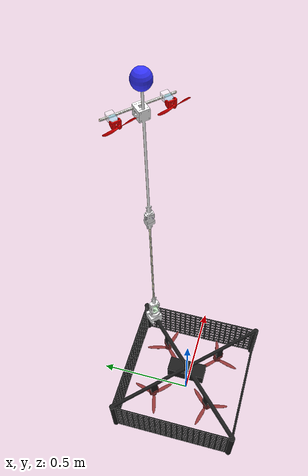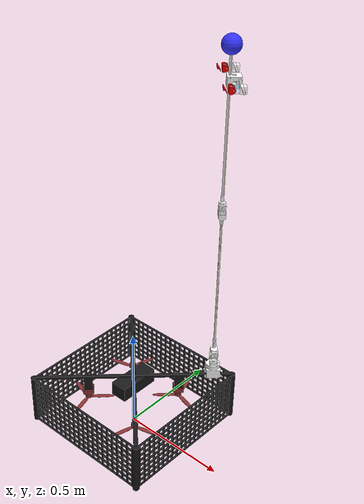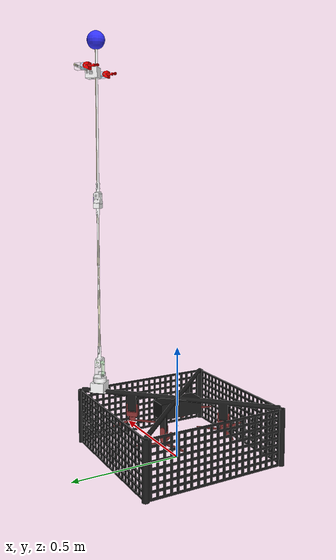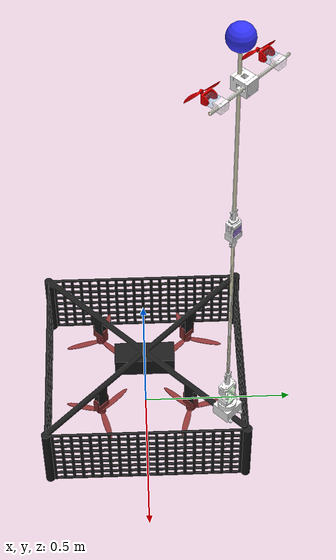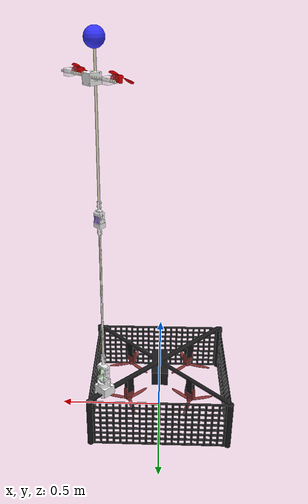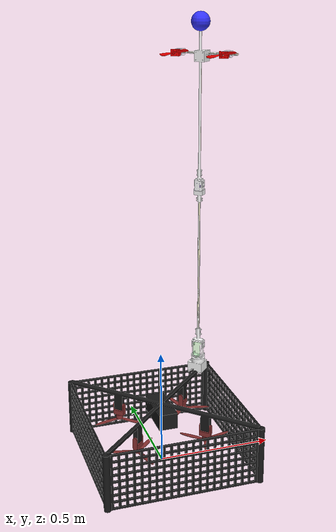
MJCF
<mujoco model="Tpam">
  <compiler angle="radian" coordinate="local" inertiafromgeom="auto"/>
  <option timestep="0.002" gravity="0 0 -9.81"/>

  <default>
    <geom friction="0.8 0.1 0.1" density="280"/>
    <joint type="hinge" damping="0.1" stiffness="0"/>
  </default>

  <asset>
    <!-- Drone meshes -->
    <mesh name="drone_body_mesh" file="BODY.stl"/>
    <mesh name="drone_servo_prop_mesh" file="PROP.stl"/>

    <!-- Arm thruster prop -->
    <mesh name="sub_prop_mesh" file="arm_assets/6prop.stl" scale="0.001 0.001 0.001"/>

    <!-- Arm meshes -->
    <mesh name="case_bearing_mesh" file="arm_assets/case_bearing.stl" scale="0.001 0.001 0.001"/>
    <mesh name="LINK1_mesh" file="arm_assets/LINK1_honebracket_540_under.stl" scale="0.001 0.001 0.001"/>
    <mesh name="servo2_mesh" file="arm_assets/XL540.stl" scale="0.001 0.001 0.001"/>
    <mesh name="LINK2_mesh" file="arm_assets/MujocoLink2.stl" scale="0.001 0.001 0.001"/>
    <mesh name="servo3_mesh" file="arm_assets/XM,H-430_idler.stl" scale="0.001 0.001 0.001"/>
    <mesh name="LINK3_mesh" file="arm_assets/LINK3_xm430_to_Wrist.stl" scale="0.001 0.001 0.001"/>
    <mesh name="LINK4_mesh" file="arm_assets/Wrist_Link.stl" scale="0.001 0.001 0.001"/>
    <mesh name="XC330_mesh" file="arm_assets/XC_330_servo.stl" scale="0.001 0.001 0.001"/>
    <mesh name="XC330bracket_mesh" file="arm_assets/XC_330_bracket.stl" scale="0.001 0.001 0.001"/>
  </asset>

  <worldbody>
    <body name="drone_base" pos="0 0 0.145">
      <freejoint name="drone_root"/>

      <inertial
        pos="0 0 0"
        quat="1 0 0 0"
        mass="4.0"
        diaginertia="0.360091 0.360702 0.660702"/>

      <geom
        name="drone_base_vis"
        type="mesh"
        mesh="drone_body_mesh"
        rgba="0.1 0.1 0.1 1"
        contype="1"
        conaffinity="1"
        group="1"/>

      <site name="drone_imu" pos="0 0 0" quat="1 0 0 0"/>

      <!-- Drone servo/prop 1 -->
      <body name="drone_servo1" pos="0.148492 0.148492 0.145" quat="0.9238795 0 0 0.3826834">
        <joint
          name="drone_j_servo1"
          type="hinge"
          axis="1 0 0"
          pos="0 0 -0.075"
          limited="true"
          range="-0.51 0.51"
          damping="0.1"
          armature="0.01"/>

        <body name="drone_prop1_body" pos="0 0 -0.075">
          <geom
            name="drone_servo1_vis"
            type="mesh"
            mesh="drone_servo_prop_mesh"
            mass="1e-9"
            quat="0.7071068 0 0 0.7071068"
            rgba="0.55 0.2 0.2 1"
            contype="0"
            conaffinity="0"
            group="1"/>

          <site name="drone_prop1_site" pos="0 0 0" size="0.004" type="sphere"/>
        </body>
      </body>

      <!-- Drone servo/prop 2 -->
      <body name="drone_servo2" pos="-0.148492 0.148492 0.145" quat="0.3826834 0 0 0.9238795">
        <joint
          name="drone_j_servo2"
          type="hinge"
          axis="1 0 0"
          pos="0 0 -0.075"
          limited="true"
          range="-0.51 0.51"
          damping="0.1"
          armature="0.01"/>

        <body name="drone_prop2_body" pos="0 0 -0.075">
          <geom
            name="drone_servo2_vis"
            type="mesh"
            mesh="drone_servo_prop_mesh"
            mass="1e-9"
            quat="0.7071068 0 0 0.7071068"
            rgba="0.55 0.2 0.2 1"
            contype="0"
            conaffinity="0"
            group="1"/>

          <site name="drone_prop2_site" pos="0 0 0" size="0.004" type="sphere"/>
        </body>
      </body>

      <!-- Drone servo/prop 3 -->
      <body name="drone_servo3" pos="-0.148492 -0.148492 0.145" quat="0.3826834 0 0 -0.9238795">
        <joint
          name="drone_j_servo3"
          type="hinge"
          axis="1 0 0"
          pos="0 0 -0.075"
          limited="true"
          range="-0.51 0.51"
          damping="0.1"
          armature="0.01"/>

        <body name="drone_prop3_body" pos="0 0 -0.075">
          <geom
            name="drone_servo3_vis"
            type="mesh"
            mesh="drone_servo_prop_mesh"
            mass="1e-9"
            quat="0.7071068 0 0 0.7071068"
            rgba="0.55 0.2 0.2 1"
            contype="0"
            conaffinity="0"
            group="1"/>

          <site name="drone_prop3_site" pos="0 0 0" size="0.004" type="sphere"/>
        </body>
      </body>

      <!-- Drone servo/prop 4 -->
      <body name="drone_servo4" pos="0.148492 -0.148492 0.145" quat="0.9238795 0 0 -0.3826834">
        <joint
          name="drone_j_servo4"
          type="hinge"
          axis="1 0 0"
          pos="0 0 -0.075"
          limited="true"
          range="-0.51 0.51"
          damping="0.1"
          armature="0.01"/>

        <body name="drone_prop4_body" pos="0 0 -0.075">
          <geom
            name="drone_servo4_vis"
            type="mesh"
            mesh="drone_servo_prop_mesh"
            mass="1e-9"
            quat="0.7071068 0 0 0.7071068"
            rgba="0.55 0.2 0.2 1"
            contype="0"
            conaffinity="0"
            group="1"/>

          <site name="drone_prop4_site" pos="0 0 0" size="0.004" type="sphere"/>
        </body>
      </body>

      <!-- Arm base -->
      <body name="base" pos="0.26 0.26 0.15" euler="0 0 -2.355">
        <body name="servo1" pos="0 0 0">
          <inertial
            pos="0 0 0"
            mass="0.225"
            fullinertia="1.385e-4 1.545e-4 1.662e-4 21.436e-9 -3713.672e-9 8.985e-9"/>
          <!-- Inertial Ixx Iyy Izz Ixy Ixz Iyz -->

          <geom name="case_col" type="box" pos="0 0 0.015" size="0.03 0.03 0.015" rgba="0 1 0 0"/>
          <geom name="case_vis" type="mesh" mesh="case_bearing_mesh" rgba="1 1 1 1" contype="0" conaffinity="0" group="1"/>

          <!-- ================= Joint 1 ================= -->
          <body name="j1" pos="0 0 0.02">
            <joint name="joint1" type="hinge" axis="0 0 1" limited="true" range="-1.57 1.57"/>

            <inertial
              pos="0 0 0"
              mass="0.225"
              fullinertia="5532.41e-9 8426.42e-9 8650.927e-9 -472.96e-9 3.397e-18 2.038e-16"/>
            <!-- Inertial Ixx Iyy Izz Ixy Ixz Iyz -->

            <geom
              name="link1_col"
              type="cylinder"
              fromto="0 0 -0.01  0 0 0.03"
              size="0.018"
              mass="0"
              rgba="0 1 0 0.1"/>

            <geom
              name="link1_vis"
              type="mesh"
              mesh="LINK1_mesh"
              pos="0 0 -0.02"
              euler="0 0 1.570796"
              rgba="1 1 1 1"
              contype="0"
              conaffinity="0"
              group="1"/>

            <!-- (B) 서보(=servo2) : 링크에 고정된 별도 body (joint 없음) -->
            <body name="servo2_body" pos="0 0 0.065">
              <!-- 여기 값은 “서보 단독” CoM/관성으로 넣기 -->
              <inertial
                pos="0 0 0"
                mass="0.165"
                fullinertia="7.32e-5 3.92e-5 6.08e-5 -1.83e-7 -2.018e-7 -8.58e-6"/>
              <!-- Inertial Ixx Iyy Izz Ixy Ixz Iyz 나머진 알아서 입력됌 -->

              <geom
                name="servo2_col"
                type="box"
                pos="0 0 0"
                size="0.018 0.016 0.03"
                mass="0"
                rgba="0 1 0 0.1"/>

              <geom
                name="servo2_vis"
                type="mesh"
                mesh="servo2_mesh"
                pos="0.0 0.069 0"
                euler="0 0 0"
                rgba="1 1 1 0.7"
                contype="0"
                conaffinity="0"
                group="1"/>

              <!-- ================= Joint 2 ================= -->
              <body name="link2" pos="0 0 0.03">
                <inertial
                  pos="0 0 0"
                  mass="0.096"
                  fullinertia="9.19e-3 9.186e-3 18.012e-6 -8.24e-16 -0.064e-9 4.735e-6"/>
                <!-- Inertial Ixx Iyy Izz Ixy Ixz Iyz 나머진 알아서 입력됌 -->

                <joint name="joint2" type="hinge" axis="0 1 0" limited="true" range="-1.57 1.57"/>

                <geom
                  name="link2_capsule"
                  type="capsule"
                  fromto="0 0 0  0 0 0.68"
                  size="0.005"
                  density="280"
                  rgba="0.9 0.8 0.1 0.1"/>

                <geom
                  name="link2_vis"
                  type="mesh"
                  mesh="LINK2_mesh"
                  pos="0 0.07 -0.03"
                  euler="0 0 0"
                  rgba="1 1 1 1"
                  contype="0"
                  conaffinity="0"
                  group="1"/>

                <body name="servo3_body" pos="0 0 0.742">
                  <geom
                    name="servo3_col"
                    type="box"
                    pos="0 0 0"
                    size="0.014 0.0169 0.02"
                    rgba="0.5 0.2 1 0.5"
                    contype="0"
                    conaffinity="0"/>

                  <geom
                    name="servo3_vis"
                    type="mesh"
                    mesh="servo3_mesh"
                    pos="0 0 0.015"
                    euler="1.570796 0 0.05"
                    rgba="1 1 1 1"
                    contype="0"
                    conaffinity="0"
                    group="1"/>

                  <!-- ================= Joint 3 ================= -->
                  <body name="link3" pos="0 0 0.01">
                    <inertial
                      pos="0 0 0"
                      mass="0.167"
                      fullinertia="1273e-6 7913e-6 6693e-6 -19.99e-6 2830e-6 6.944e-6"/>
                    <!-- Inertial Ixx Iyy Izz Ixy Ixz Iyz 나머진 알아서 입력됌 -->

                    <joint name="joint3" type="hinge" axis="0 1 0" limited="true" range="-1.57 1.57"/>

                    <geom
                      name="link3_capsule"
                      type="capsule"
                      fromto="0 0 0  0 0 0.68"
                      size="0.005"
                      density="280"
                      rgba="0.9 0.8 0.1 0.2"/>

                    <geom
                      name="link3_vis"
                      type="mesh"
                      mesh="LINK3_mesh"
                      pos="0.006 0 0.54"
                      euler="0 0 -1.570796"
                      rgba="1 1 1 1"
                      contype="0"
                      conaffinity="0"
                      group="1"/>

			<body name="ee_body" pos="0 0 0.68">
			  <!-- joint가 없으므로 link3에 고정됨 -->
			  <geom
			    name="End-effector"
			    type="sphere"
			    pos="0 0 0"
			    size="0.04"
			    mass="0.20"
			    rgba="0.2 0.2 1 1"/>

			  <site
			    name="ee_site"
			    pos="0 0 0"
			    size="0.01"
			    type="sphere"
			    rgba="0 1 0 0"/>
			</body>

                    <body name="link4" pos="-0.035 0 0.55">
                      <geom
                        name="link4_capsule"
                        type="capsule"
                        fromto="0 -0.15 0  0 0.15 0"
                        size="0.005"
                        density="280"
                        rgba="0.9 0.8 0.1 0.2"/>

                      <geom
                        name="link4_vis"
                        type="mesh"
                        mesh="LINK4_mesh"
                        pos="0 0 0"
                        euler="0 0 -1.570796"
                        rgba="1 1 1 1"
                        contype="0"
                        conaffinity="0"
                        group="1"/>

                      <!-- LEFT: link4에 고정된 바디 -->
                      <body name="thruster_left_body" pos="0 0.11 0">
                        <geom
                          name="thruster_left_fixed_box"
                          type="box"
                          pos="0.014 0 0"
                          size="0.025 0.013 0.013"
                          rgba="0 0.8 1 0.1"
                          contype="0"
                          conaffinity="0"/>

                        <geom
                          name="XC330_left_vis"
                          type="mesh"
                          mesh="XC330_mesh"
                          pos="0.025 0.008 0"
                          euler="-1.570796 0 -1.570796"
                          rgba="1 1 1 0.5"
                          contype="0"
                          conaffinity="0"
                          density="0"
                          group="1"/>

                        <!-- 회전하는 바디(hinge) -->
                        <body name="servo4_left" pos="0.035 0.000 0">
                          <!-- joint는 최소 inertial 부여 -->
                          <inertial pos="0 0 0" mass="0.02" diaginertia="1e-5 1e-5 1e-5"/>

                          <joint
                            name="joint5_left"
                            type="hinge"
                            axis="0 1 0"
                            limited="true"
                            range="-1.57 1.57"
                            damping="0.1"/>

                          <body name="prop_left_body" pos="0 0 0">
                            <site name="prop_left_site" pos="0.03 0 0" size="0.005" rgba="1 1 0 0"/>

                            <geom
                              name="XC330bracket_left_vis"
                              type="mesh"
                              mesh="XC330bracket_mesh"
                              euler="-1.570796 0 -1.570796"
                              pos="-0.01 0.007 0"
                              rgba="1 0 0 1"
                              contype="0"
                              conaffinity="0"
                              density="0"
                              group="1"/>

                            <geom
                              name="prop_left_vis"
                              type="mesh"
                              mesh="sub_prop_mesh"
                              euler="0 1.570796 0"
                              pos="0.03 -0.07 0.018"
                              rgba="1 0 0 1"
                              contype="0"
                              conaffinity="0"
                              density="0"
                              group="1"/>
                          </body>
                        </body>
                      </body>

                      <!-- RIGHT: link4에 고정된 바디 -->
                      <body name="thruster_right_body" pos="0 -0.11 0">
                        <geom
                          name="thruster_right_fixed_box"
                          type="box"
                          pos="0.014 0 0"
                          size="0.025 0.013 0.013"
                          rgba="0 0.8 1 0.2"
                          contype="0"
                          conaffinity="0"/>

                        <geom
                          name="XC330_right_vis"
                          type="mesh"
                          mesh="XC330_mesh"
                          pos="0.025 0.008 0"
                          euler="-1.570796 0 -1.570796"
                          rgba="1 1 1 0.4"
                          contype="0"
                          conaffinity="0"
                          density="0"
                          group="1"/>

                        <body name="servo4_right" pos="0.035 0.000 0">
                          <inertial pos="0 0 0" mass="0.02" diaginertia="1e-5 1e-5 1e-5"/>

                          <joint
                            name="joint5_right"
                            type="hinge"
                            axis="0 1 0"
                            limited="true"
                            range="-1.57 1.57"
                            damping="0.1"/>

                          <body name="prop_right_body" pos="0 0 0 ">
                            <site name="prop_right_site" pos="0.03  0 0" size="0.005" rgba="1 1 0 0"/>

                            <geom
                              name="XC330bracket_right_vis"
                              type="mesh"
                              mesh="XC330bracket_mesh"
                              euler="-1.570796 0 -1.570796"
                              pos="-0.01 0.007 0"
                              rgba="1 0 0 1"
                              contype="0"
                              conaffinity="0"
                              density="0"
                              group="1"/>

                            <geom
                              name="prop_right_vis"
                              type="mesh"
                              mesh="sub_prop_mesh"
                              euler="0 1.570796 0"
                              pos="0.03 -0.065 0.018"
                              rgba="1 0 0 1"
                              contype="0"
                              conaffinity="0"
                              density="0"
                              group="1"/>
                          </body>
                        </body>
                      </body>

                    </body> <!-- link4 -->
                  </body>   <!-- link3 -->
                </body>     <!-- servo3_body -->
              </body>       <!-- link2 -->
            </body>         <!-- servo2_body -->
          </body>
        </body>             <!-- servo1 -->
      </body>               <!-- base -->

    </body>                 <!-- drone_base -->
  </worldbody>

  <contact>
    <exclude body1="link3" body2="link4"/>
    <exclude body1="link4" body2="thruster_left_body"/>
    <exclude body1="link4" body2="thruster_right_body"/>
  </contact>

  <actuator>
    <position
      name="pos_joint1"
      joint="joint1"
      kp="10.0"
      kv="0.2"
      ctrllimited="true"
      ctrlrange="-1.57 1.57"
      forcelimited="true"
      forcerange="-4.1 4.1"/>

    <position
      name="pos_joint2"
      joint="joint2"
      kp="60.0"
      kv="0.3"
      ctrllimited="true"
      ctrlrange="-1.57 1.57"
      forcelimited="true"
      forcerange="-10.6 10.6"/>

    <position
      name="pos_joint3"
      joint="joint3"
      kp="60.0"
      kv="0.2"
      ctrllimited="true"
      ctrlrange="-1.57 1.57"
      forcelimited="true"
      forcerange="-4.1 4.1"/>

    <position
      name="pos_joint5_L"
      joint="joint5_left"
      kp="3.0"
      kv="0.05"
      ctrllimited="true"
      ctrlrange="-1.57 1.57"
      forcelimited="true"
      forcerange="-0.9 0.9"/>

    <position
      name="pos_joint5_R"
      joint="joint5_right"
      kp="3.0"
      kv="0.05"
      ctrllimited="true"
      ctrlrange="-1.57 1.57"
      forcelimited="true"
      forcerange="-0.9 0.9"/>

    <general
      name="thruster_left"
      site="prop_left_site"
      gear="1 0 0 0 0 0"
      ctrllimited="true"
      ctrlrange="0 15"/>

    <general
      name="thruster_right"
      site="prop_right_site"
      gear="1 0 0 0 0 0"
      ctrllimited="true"
      ctrlrange="0 15"/>

    <general name="drone_BLDC1" site="drone_prop1_site" gear="0 0 1 0 0  0.02" ctrlrange="0 50"/>
    <general name="drone_BLDC2" site="drone_prop2_site" gear="0 0 1 0 0 -0.02" ctrlrange="0 50"/>
    <general name="drone_BLDC3" site="drone_prop3_site" gear="0 0 1 0 0  0.02" ctrlrange="0 50"/>
    <general name="drone_BLDC4" site="drone_prop4_site" gear="0 0 1 0 0 -0.02" ctrlrange="0 50"/>

    <position name="drone_servo1_pos" joint="drone_j_servo1" kp="50" kv="0.02" ctrlrange="-0.51 0.51"/>
    <position name="drone_servo2_pos" joint="drone_j_servo2" kp="50" kv="0.02" ctrlrange="-0.51 0.51"/>
    <position name="drone_servo3_pos" joint="drone_j_servo3" kp="50" kv="0.02" ctrlrange="-0.51 0.51"/>
    <position name="drone_servo4_pos" joint="drone_j_servo4" kp="50" kv="0.02" ctrlrange="-0.51 0.51"/>
  </actuator>

  <sensor>
  <!--framepos/framelinvel은 world frame 기준값-->
    <jointpos name="q1_sensor" joint="joint1"/>
    <jointpos name="q2_sensor" joint="joint2"/>
    <jointpos name="q3_sensor" joint="joint3"/>
    <jointpos name="q5_L_sensor" joint="joint5_left"/>
    <jointpos name="q5_R_sensor" joint="joint5_right"/>

    <framequat name="link3_quat" objtype="body" objname="link3"/>
    <framequat name="link4_quat" objtype="body" objname="link4"/>

    <framequat name="drone_body_quat" objtype="site" objname="drone_imu"/>
    <gyro name="drone_body_gyro" site="drone_imu"/>

    <framepos name="drone_base_pos" objtype="body" objname="drone_base"/>
    <framelinvel name="drone_base_linvel" objtype="body" objname="drone_base"/>

    <jointpos name="drone_servo1_angle" joint="drone_j_servo1"/>
    <jointpos name="drone_servo2_angle" joint="drone_j_servo2"/>
    <jointpos name="drone_servo3_angle" joint="drone_j_servo3"/>
    <jointpos name="drone_servo4_angle" joint="drone_j_servo4"/>

    <framepos  name="ee_pos"    objtype="site" objname="ee_site"/>
    <framequat name="ee_quat"   objtype="site" objname="ee_site"/>
    <framelinvel name="ee_linvel" objtype="site" objname="ee_site"/>
    <frameangvel name="ee_angvel" objtype="site" objname="ee_site"/>

    <jointvel name="dq1_sensor" joint="joint1"/>
    <jointvel name="dq2_sensor" joint="joint2"/>
    <jointvel name="dq3_sensor" joint="joint3"/>

    <jointvel name="d_servo1" joint="drone_j_servo1"/>
    <jointvel name="d_servo2" joint="drone_j_servo2"/>
    <jointvel name="d_servo3" joint="drone_j_servo3"/>
    <jointvel name="d_servo4" joint="drone_j_servo4"/>

    <jointvel name="dq5_L_sensor" joint="joint5_left"/>
    <jointvel name="dq5_R_sensor" joint="joint5_right"/>
  </sensor>
</mujoco>
